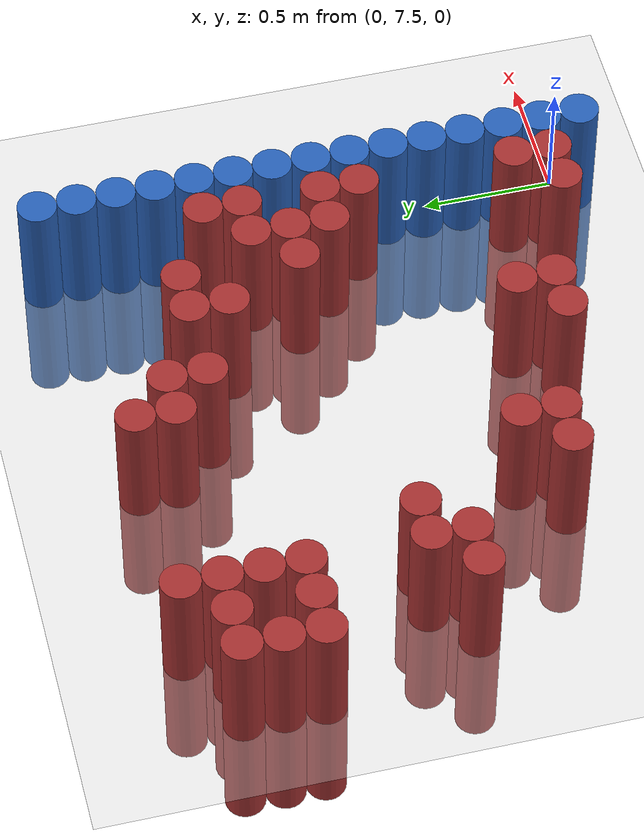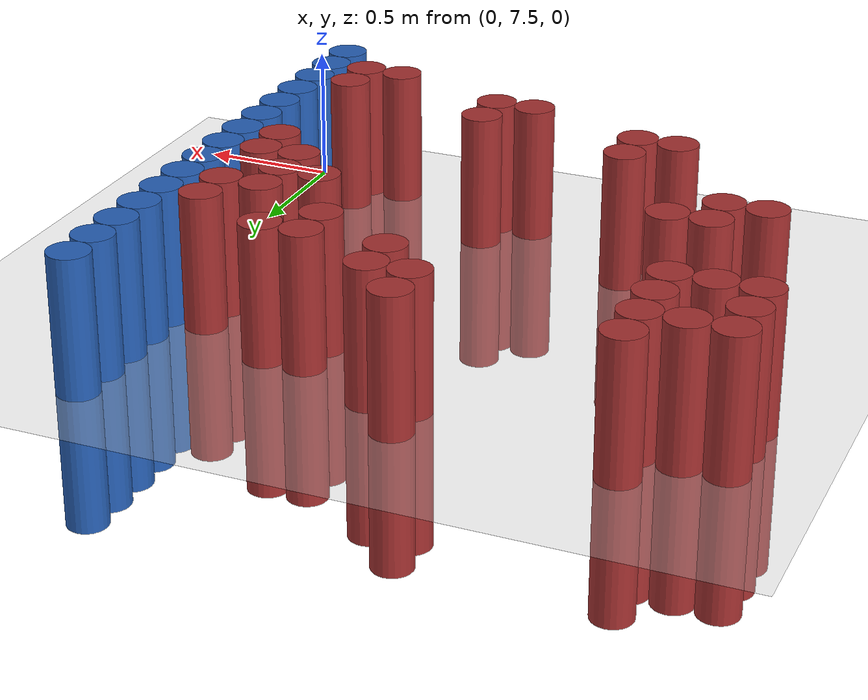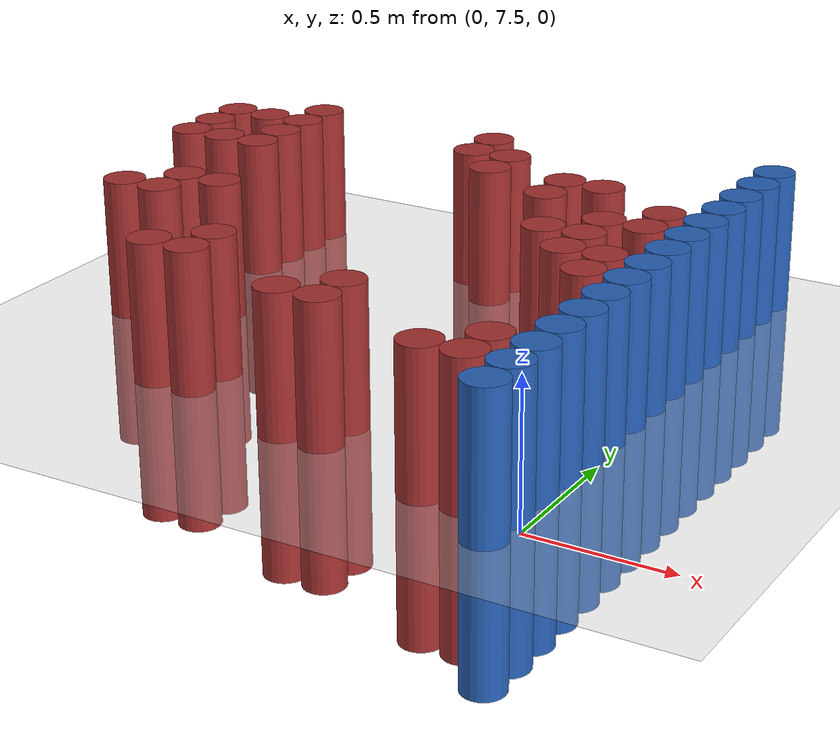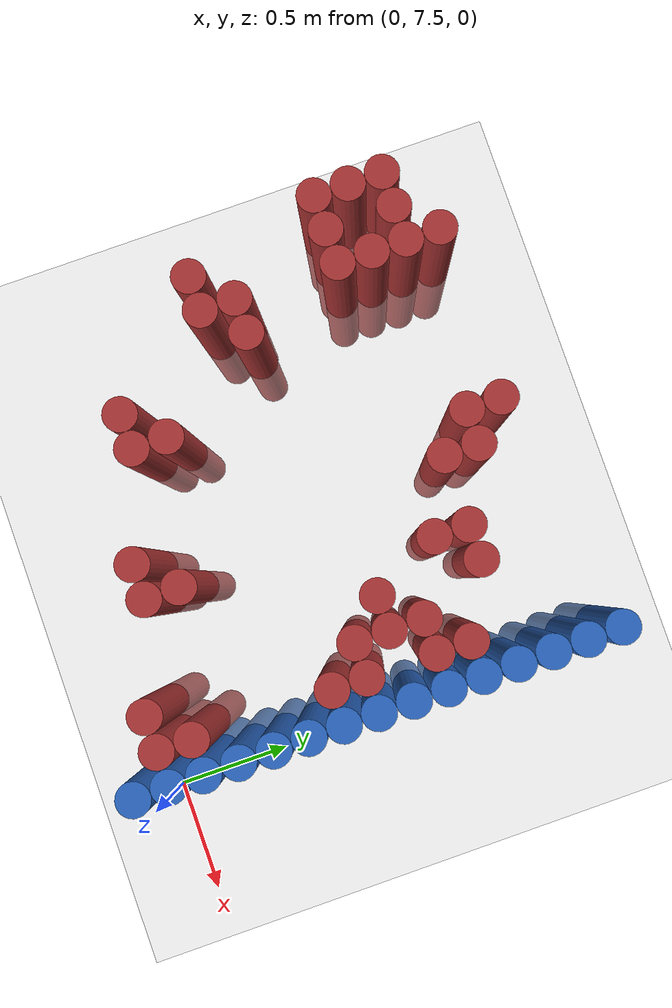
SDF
<sdf version="1.6">
 <world name="default">
  <model name="ground_plane">
   <static>1</static>
   <link name="link">
    <collision name="collision">
     <geometry><plane><normal>0 0 1</normal><size>100 100</size></plane></geometry>
     <surface><friction><ode><mu>100</mu><mu2>50</mu2></ode></friction></surface>
    </collision>
    <visual name="visual">
     <cast_shadows>0</cast_shadows>
     <geometry><plane><normal>0 0 1</normal><size>100 100</size></plane></geometry>
     <material>
      <script><uri>file://media/materials/scripts/gazebo.material</uri><name>Gazebo/Grey</name></script>
     </material>
    </visual>
   </link>
  </model>
  <model name="unit_cylinder_155">
   <static>1</static>
   <pose>-2.175000 8.925000 0.000000 0.000000 0.000000 0.000000</pose>
   <link name="link">
    <inertial>
     <mass>1</mass>
     <inertia><ixx>0.145833</ixx><ixy>0</ixy><ixz>0</ixz><iyy>0.145833</iyy><iyz>0</iyz><izz>0.125</izz></inertia>
    </inertial>
    <collision name="collision">
     <geometry><cylinder><radius>0.075000</radius><length>1</length></cylinder></geometry>
    </collision>
    <visual name="visual">
     <geometry><cylinder><radius>0.075000</radius><length>1</length></cylinder></geometry>
     <material>
      <ambient>0.648000 0.192000 0.192000 1</ambient>
      <diffuse>0.648000 0.192000 0.192000 1</diffuse>
     </material>
     <material>
      <script><name>Gazebo/Grey</name><uri>file://media/materials/scripts/gazebo.material</uri></script>
     </material>
    </visual>
   </link>
  </model>
  <model name="unit_cylinder_156">
   <static>1</static>
   <pose>-2.175000 9.075000 0.000000 0.000000 0.000000 0.000000</pose>
   <link name="link">
    <inertial>
     <mass>1</mass>
     <inertia><ixx>0.145833</ixx><ixy>0</ixy><ixz>0</ixz><iyy>0.145833</iyy><iyz>0</iyz><izz>0.125</izz></inertia>
    </inertial>
    <collision name="collision">
     <geometry><cylinder><radius>0.075000</radius><length>1</length></cylinder></geometry>
    </collision>
    <visual name="visual">
     <geometry><cylinder><radius>0.075000</radius><length>1</length></cylinder></geometry>
     <material>
      <ambient>0.648000 0.192000 0.192000 1</ambient>
      <diffuse>0.648000 0.192000 0.192000 1</diffuse>
     </material>
     <material>
      <script><name>Gazebo/Grey</name><uri>file://media/materials/scripts/gazebo.material</uri></script>
     </material>
    </visual>
   </link>
  </model>
  <model name="unit_cylinder_157">
   <static>1</static>
   <pose>-2.175000 9.225000 0.000000 0.000000 0.000000 0.000000</pose>
   <link name="link">
    <inertial>
     <mass>1</mass>
     <inertia><ixx>0.145833</ixx><ixy>0</ixy><ixz>0</ixz><iyy>0.145833</iyy><iyz>0</iyz><izz>0.125</izz></inertia>
    </inertial>
    <collision name="collision">
     <geometry><cylinder><radius>0.075000</radius><length>1</length></cylinder></geometry>
    </collision>
    <visual name="visual">
     <geometry><cylinder><radius>0.075000</radius><length>1</length></cylinder></geometry>
     <material>
      <ambient>0.648000 0.192000 0.192000 1</ambient>
      <diffuse>0.648000 0.192000 0.192000 1</diffuse>
     </material>
     <material>
      <script><name>Gazebo/Grey</name><uri>file://media/materials/scripts/gazebo.material</uri></script>
     </material>
    </visual>
   </link>
  </model>
  <model name="unit_cylinder_161">
   <static>1</static>
   <pose>-2.025000 8.325000 0.000000 0.000000 0.000000 0.000000</pose>
   <link name="link">
    <inertial>
     <mass>1</mass>
     <inertia><ixx>0.145833</ixx><ixy>0</ixy><ixz>0</ixz><iyy>0.145833</iyy><iyz>0</iyz><izz>0.125</izz></inertia>
    </inertial>
    <collision name="collision">
     <geometry><cylinder><radius>0.075000</radius><length>1</length></cylinder></geometry>
    </collision>
    <visual name="visual">
     <geometry><cylinder><radius>0.075000</radius><length>1</length></cylinder></geometry>
     <material>
      <ambient>0.648000 0.192000 0.192000 1</ambient>
      <diffuse>0.648000 0.192000 0.192000 1</diffuse>
     </material>
     <material>
      <script><name>Gazebo/Grey</name><uri>file://media/materials/scripts/gazebo.material</uri></script>
     </material>
    </visual>
   </link>
  </model>
  <model name="unit_cylinder_162">
   <static>1</static>
   <pose>-2.025000 8.925000 0.000000 0.000000 0.000000 0.000000</pose>
   <link name="link">
    <inertial>
     <mass>1</mass>
     <inertia><ixx>0.145833</ixx><ixy>0</ixy><ixz>0</ixz><iyy>0.145833</iyy><iyz>0</iyz><izz>0.125</izz></inertia>
    </inertial>
    <collision name="collision">
     <geometry><cylinder><radius>0.075000</radius><length>1</length></cylinder></geometry>
    </collision>
    <visual name="visual">
     <geometry><cylinder><radius>0.075000</radius><length>1</length></cylinder></geometry>
     <material>
      <ambient>0.648000 0.192000 0.192000 1</ambient>
      <diffuse>0.648000 0.192000 0.192000 1</diffuse>
     </material>
     <material>
      <script><name>Gazebo/Grey</name><uri>file://media/materials/scripts/gazebo.material</uri></script>
     </material>
    </visual>
   </link>
  </model>
  <model name="unit_cylinder_163">
   <static>1</static>
   <pose>-2.025000 9.225000 0.000000 0.000000 0.000000 0.000000</pose>
   <link name="link">
    <inertial>
     <mass>1</mass>
     <inertia><ixx>0.145833</ixx><ixy>0</ixy><ixz>0</ixz><iyy>0.145833</iyy><iyz>0</iyz><izz>0.125</izz></inertia>
    </inertial>
    <collision name="collision">
     <geometry><cylinder><radius>0.075000</radius><length>1</length></cylinder></geometry>
    </collision>
    <visual name="visual">
     <geometry><cylinder><radius>0.075000</radius><length>1</length></cylinder></geometry>
     <material>
      <ambient>0.648000 0.192000 0.192000 1</ambient>
      <diffuse>0.648000 0.192000 0.192000 1</diffuse>
     </material>
     <material>
      <script><name>Gazebo/Grey</name><uri>file://media/materials/scripts/gazebo.material</uri></script>
     </material>
    </visual>
   </link>
  </model>
  <model name="unit_cylinder_166">
   <static>1</static>
   <pose>-1.875000 8.325000 0.000000 0.000000 0.000000 0.000000</pose>
   <link name="link">
    <inertial>
     <mass>1</mass>
     <inertia><ixx>0.145833</ixx><ixy>0</ixy><ixz>0</ixz><iyy>0.145833</iyy><iyz>0</iyz><izz>0.125</izz></inertia>
    </inertial>
    <collision name="collision">
     <geometry><cylinder><radius>0.075000</radius><length>1</length></cylinder></geometry>
    </collision>
    <visual name="visual">
     <geometry><cylinder><radius>0.075000</radius><length>1</length></cylinder></geometry>
     <material>
      <ambient>0.648000 0.192000 0.192000 1</ambient>
      <diffuse>0.648000 0.192000 0.192000 1</diffuse>
     </material>
     <material>
      <script><name>Gazebo/Grey</name><uri>file://media/materials/scripts/gazebo.material</uri></script>
     </material>
    </visual>
   </link>
  </model>
  <model name="unit_cylinder_167">
   <static>1</static>
   <pose>-1.875000 8.475000 0.000000 0.000000 0.000000 0.000000</pose>
   <link name="link">
    <inertial>
     <mass>1</mass>
     <inertia><ixx>0.145833</ixx><ixy>0</ixy><ixz>0</ixz><iyy>0.145833</iyy><iyz>0</iyz><izz>0.125</izz></inertia>
    </inertial>
    <collision name="collision">
     <geometry><cylinder><radius>0.075000</radius><length>1</length></cylinder></geometry>
    </collision>
    <visual name="visual">
     <geometry><cylinder><radius>0.075000</radius><length>1</length></cylinder></geometry>
     <material>
      <ambient>0.648000 0.192000 0.192000 1</ambient>
      <diffuse>0.648000 0.192000 0.192000 1</diffuse>
     </material>
     <material>
      <script><name>Gazebo/Grey</name><uri>file://media/materials/scripts/gazebo.material</uri></script>
     </material>
    </visual>
   </link>
  </model>
  <model name="unit_cylinder_168">
   <static>1</static>
   <pose>-1.875000 8.925000 0.000000 0.000000 0.000000 0.000000</pose>
   <link name="link">
    <inertial>
     <mass>1</mass>
     <inertia><ixx>0.145833</ixx><ixy>0</ixy><ixz>0</ixz><iyy>0.145833</iyy><iyz>0</iyz><izz>0.125</izz></inertia>
    </inertial>
    <collision name="collision">
     <geometry><cylinder><radius>0.075000</radius><length>1</length></cylinder></geometry>
    </collision>
    <visual name="visual">
     <geometry><cylinder><radius>0.075000</radius><length>1</length></cylinder></geometry>
     <material>
      <ambient>0.648000 0.192000 0.192000 1</ambient>
      <diffuse>0.648000 0.192000 0.192000 1</diffuse>
     </material>
     <material>
      <script><name>Gazebo/Grey</name><uri>file://media/materials/scripts/gazebo.material</uri></script>
     </material>
    </visual>
   </link>
  </model>
  <model name="unit_cylinder_169">
   <static>1</static>
   <pose>-1.875000 9.075000 0.000000 0.000000 0.000000 0.000000</pose>
   <link name="link">
    <inertial>
     <mass>1</mass>
     <inertia><ixx>0.145833</ixx><ixy>0</ixy><ixz>0</ixz><iyy>0.145833</iyy><iyz>0</iyz><izz>0.125</izz></inertia>
    </inertial>
    <collision name="collision">
     <geometry><cylinder><radius>0.075000</radius><length>1</length></cylinder></geometry>
    </collision>
    <visual name="visual">
     <geometry><cylinder><radius>0.075000</radius><length>1</length></cylinder></geometry>
     <material>
      <ambient>0.648000 0.192000 0.192000 1</ambient>
      <diffuse>0.648000 0.192000 0.192000 1</diffuse>
     </material>
     <material>
      <script><name>Gazebo/Grey</name><uri>file://media/materials/scripts/gazebo.material</uri></script>
     </material>
    </visual>
   </link>
  </model>
  <model name="unit_cylinder_170">
   <static>1</static>
   <pose>-1.875000 9.225000 0.000000 0.000000 0.000000 0.000000</pose>
   <link name="link">
    <inertial>
     <mass>1</mass>
     <inertia><ixx>0.145833</ixx><ixy>0</ixy><ixz>0</ixz><iyy>0.145833</iyy><iyz>0</iyz><izz>0.125</izz></inertia>
    </inertial>
    <collision name="collision">
     <geometry><cylinder><radius>0.075000</radius><length>1</length></cylinder></geometry>
    </collision>
    <visual name="visual">
     <geometry><cylinder><radius>0.075000</radius><length>1</length></cylinder></geometry>
     <material>
      <ambient>0.648000 0.192000 0.192000 1</ambient>
      <diffuse>0.648000 0.192000 0.192000 1</diffuse>
     </material>
     <material>
      <script><name>Gazebo/Grey</name><uri>file://media/materials/scripts/gazebo.material</uri></script>
     </material>
    </visual>
   </link>
  </model>
  <model name="unit_cylinder_171">
   <static>1</static>
   <pose>-1.875000 9.375000 0.000000 0.000000 0.000000 0.000000</pose>
   <link name="link">
    <inertial>
     <mass>1</mass>
     <inertia><ixx>0.145833</ixx><ixy>0</ixy><ixz>0</ixz><iyy>0.145833</iyy><iyz>0</iyz><izz>0.125</izz></inertia>
    </inertial>
    <collision name="collision">
     <geometry><cylinder><radius>0.075000</radius><length>1</length></cylinder></geometry>
    </collision>
    <visual name="visual">
     <geometry><cylinder><radius>0.075000</radius><length>1</length></cylinder></geometry>
     <material>
      <ambient>0.648000 0.192000 0.192000 1</ambient>
      <diffuse>0.648000 0.192000 0.192000 1</diffuse>
     </material>
     <material>
      <script><name>Gazebo/Grey</name><uri>file://media/materials/scripts/gazebo.material</uri></script>
     </material>
    </visual>
   </link>
  </model>
  <model name="unit_cylinder_174">
   <static>1</static>
   <pose>-1.725000 8.475000 0.000000 0.000000 0.000000 0.000000</pose>
   <link name="link">
    <inertial>
     <mass>1</mass>
     <inertia><ixx>0.145833</ixx><ixy>0</ixy><ixz>0</ixz><iyy>0.145833</iyy><iyz>0</iyz><izz>0.125</izz></inertia>
    </inertial>
    <collision name="collision">
     <geometry><cylinder><radius>0.075000</radius><length>1</length></cylinder></geometry>
    </collision>
    <visual name="visual">
     <geometry><cylinder><radius>0.075000</radius><length>1</length></cylinder></geometry>
     <material>
      <ambient>0.648000 0.192000 0.192000 1</ambient>
      <diffuse>0.648000 0.192000 0.192000 1</diffuse>
     </material>
     <material>
      <script><name>Gazebo/Grey</name><uri>file://media/materials/scripts/gazebo.material</uri></script>
     </material>
    </visual>
   </link>
  </model>
  <model name="unit_cylinder_177">
   <static>1</static>
   <pose>-1.575000 7.875000 0.000000 0.000000 0.000000 0.000000</pose>
   <link name="link">
    <inertial>
     <mass>1</mass>
     <inertia><ixx>0.145833</ixx><ixy>0</ixy><ixz>0</ixz><iyy>0.145833</iyy><iyz>0</iyz><izz>0.125</izz></inertia>
    </inertial>
    <collision name="collision">
     <geometry><cylinder><radius>0.075000</radius><length>1</length></cylinder></geometry>
    </collision>
    <visual name="visual">
     <geometry><cylinder><radius>0.075000</radius><length>1</length></cylinder></geometry>
     <material>
      <ambient>0.648000 0.192000 0.192000 1</ambient>
      <diffuse>0.648000 0.192000 0.192000 1</diffuse>
     </material>
     <material>
      <script><name>Gazebo/Grey</name><uri>file://media/materials/scripts/gazebo.material</uri></script>
     </material>
    </visual>
   </link>
  </model>
  <model name="unit_cylinder_180">
   <static>1</static>
   <pose>-1.425000 7.875000 0.000000 0.000000 0.000000 0.000000</pose>
   <link name="link">
    <inertial>
     <mass>1</mass>
     <inertia><ixx>0.145833</ixx><ixy>0</ixy><ixz>0</ixz><iyy>0.145833</iyy><iyz>0</iyz><izz>0.125</izz></inertia>
    </inertial>
    <collision name="collision">
     <geometry><cylinder><radius>0.075000</radius><length>1</length></cylinder></geometry>
    </collision>
    <visual name="visual">
     <geometry><cylinder><radius>0.075000</radius><length>1</length></cylinder></geometry>
     <material>
      <ambient>0.648000 0.192000 0.192000 1</ambient>
      <diffuse>0.648000 0.192000 0.192000 1</diffuse>
     </material>
     <material>
      <script><name>Gazebo/Grey</name><uri>file://media/materials/scripts/gazebo.material</uri></script>
     </material>
    </visual>
   </link>
  </model>
  <model name="unit_cylinder_181">
   <static>1</static>
   <pose>-1.425000 8.025000 0.000000 0.000000 0.000000 0.000000</pose>
   <link name="link">
    <inertial>
     <mass>1</mass>
     <inertia><ixx>0.145833</ixx><ixy>0</ixy><ixz>0</ixz><iyy>0.145833</iyy><iyz>0</iyz><izz>0.125</izz></inertia>
    </inertial>
    <collision name="collision">
     <geometry><cylinder><radius>0.075000</radius><length>1</length></cylinder></geometry>
    </collision>
    <visual name="visual">
     <geometry><cylinder><radius>0.075000</radius><length>1</length></cylinder></geometry>
     <material>
      <ambient>0.648000 0.192000 0.192000 1</ambient>
      <diffuse>0.648000 0.192000 0.192000 1</diffuse>
     </material>
     <material>
      <script><name>Gazebo/Grey</name><uri>file://media/materials/scripts/gazebo.material</uri></script>
     </material>
    </visual>
   </link>
  </model>
  <model name="unit_cylinder_186">
   <static>1</static>
   <pose>-1.125000 9.225000 0.000000 0.000000 0.000000 0.000000</pose>
   <link name="link">
    <inertial>
     <mass>1</mass>
     <inertia><ixx>0.145833</ixx><ixy>0</ixy><ixz>0</ixz><iyy>0.145833</iyy><iyz>0</iyz><izz>0.125</izz></inertia>
    </inertial>
    <collision name="collision">
     <geometry><cylinder><radius>0.075000</radius><length>1</length></cylinder></geometry>
    </collision>
    <visual name="visual">
     <geometry><cylinder><radius>0.075000</radius><length>1</length></cylinder></geometry>
     <material>
      <ambient>0.648000 0.192000 0.192000 1</ambient>
      <diffuse>0.648000 0.192000 0.192000 1</diffuse>
     </material>
     <material>
      <script><name>Gazebo/Grey</name><uri>file://media/materials/scripts/gazebo.material</uri></script>
     </material>
    </visual>
   </link>
  </model>
  <model name="unit_cylinder_187">
   <static>1</static>
   <pose>-1.125000 9.375000 0.000000 0.000000 0.000000 0.000000</pose>
   <link name="link">
    <inertial>
     <mass>1</mass>
     <inertia><ixx>0.145833</ixx><ixy>0</ixy><ixz>0</ixz><iyy>0.145833</iyy><iyz>0</iyz><izz>0.125</izz></inertia>
    </inertial>
    <collision name="collision">
     <geometry><cylinder><radius>0.075000</radius><length>1</length></cylinder></geometry>
    </collision>
    <visual name="visual">
     <geometry><cylinder><radius>0.075000</radius><length>1</length></cylinder></geometry>
     <material>
      <ambient>0.648000 0.192000 0.192000 1</ambient>
      <diffuse>0.648000 0.192000 0.192000 1</diffuse>
     </material>
     <material>
      <script><name>Gazebo/Grey</name><uri>file://media/materials/scripts/gazebo.material</uri></script>
     </material>
    </visual>
   </link>
  </model>
  <model name="unit_cylinder_189">
   <static>1</static>
   <pose>-0.975000 7.725000 0.000000 0.000000 0.000000 0.000000</pose>
   <link name="link">
    <inertial>
     <mass>1</mass>
     <inertia><ixx>0.145833</ixx><ixy>0</ixy><ixz>0</ixz><iyy>0.145833</iyy><iyz>0</iyz><izz>0.125</izz></inertia>
    </inertial>
    <collision name="collision">
     <geometry><cylinder><radius>0.075000</radius><length>1</length></cylinder></geometry>
    </collision>
    <visual name="visual">
     <geometry><cylinder><radius>0.075000</radius><length>1</length></cylinder></geometry>
     <material>
      <ambient>0.648000 0.192000 0.192000 1</ambient>
      <diffuse>0.648000 0.192000 0.192000 1</diffuse>
     </material>
     <material>
      <script><name>Gazebo/Grey</name><uri>file://media/materials/scripts/gazebo.material</uri></script>
     </material>
    </visual>
   </link>
  </model>
  <model name="unit_cylinder_190">
   <static>1</static>
   <pose>-0.975000 9.075000 0.000000 0.000000 0.000000 0.000000</pose>
   <link name="link">
    <inertial>
     <mass>1</mass>
     <inertia><ixx>0.145833</ixx><ixy>0</ixy><ixz>0</ixz><iyy>0.145833</iyy><iyz>0</iyz><izz>0.125</izz></inertia>
    </inertial>
    <collision name="collision">
     <geometry><cylinder><radius>0.075000</radius><length>1</length></cylinder></geometry>
    </collision>
    <visual name="visual">
     <geometry><cylinder><radius>0.075000</radius><length>1</length></cylinder></geometry>
     <material>
      <ambient>0.648000 0.192000 0.192000 1</ambient>
      <diffuse>0.648000 0.192000 0.192000 1</diffuse>
     </material>
     <material>
      <script><name>Gazebo/Grey</name><uri>file://media/materials/scripts/gazebo.material</uri></script>
     </material>
    </visual>
   </link>
  </model>
  <model name="unit_cylinder_191">
   <static>1</static>
   <pose>-0.975000 9.225000 0.000000 0.000000 0.000000 0.000000</pose>
   <link name="link">
    <inertial>
     <mass>1</mass>
     <inertia><ixx>0.145833</ixx><ixy>0</ixy><ixz>0</ixz><iyy>0.145833</iyy><iyz>0</iyz><izz>0.125</izz></inertia>
    </inertial>
    <collision name="collision">
     <geometry><cylinder><radius>0.075000</radius><length>1</length></cylinder></geometry>
    </collision>
    <visual name="visual">
     <geometry><cylinder><radius>0.075000</radius><length>1</length></cylinder></geometry>
     <material>
      <ambient>0.648000 0.192000 0.192000 1</ambient>
      <diffuse>0.648000 0.192000 0.192000 1</diffuse>
     </material>
     <material>
      <script><name>Gazebo/Grey</name><uri>file://media/materials/scripts/gazebo.material</uri></script>
     </material>
    </visual>
   </link>
  </model>
  <model name="unit_cylinder_192">
   <static>1</static>
   <pose>-0.825000 7.725000 0.000000 0.000000 0.000000 0.000000</pose>
   <link name="link">
    <inertial>
     <mass>1</mass>
     <inertia><ixx>0.145833</ixx><ixy>0</ixy><ixz>0</ixz><iyy>0.145833</iyy><iyz>0</iyz><izz>0.125</izz></inertia>
    </inertial>
    <collision name="collision">
     <geometry><cylinder><radius>0.075000</radius><length>1</length></cylinder></geometry>
    </collision>
    <visual name="visual">
     <geometry><cylinder><radius>0.075000</radius><length>1</length></cylinder></geometry>
     <material>
      <ambient>0.648000 0.192000 0.192000 1</ambient>
      <diffuse>0.648000 0.192000 0.192000 1</diffuse>
     </material>
     <material>
      <script><name>Gazebo/Grey</name><uri>file://media/materials/scripts/gazebo.material</uri></script>
     </material>
    </visual>
   </link>
  </model>
  <model name="unit_cylinder_193">
   <static>1</static>
   <pose>-0.825000 7.875000 0.000000 0.000000 0.000000 0.000000</pose>
   <link name="link">
    <inertial>
     <mass>1</mass>
     <inertia><ixx>0.145833</ixx><ixy>0</ixy><ixz>0</ixz><iyy>0.145833</iyy><iyz>0</iyz><izz>0.125</izz></inertia>
    </inertial>
    <collision name="collision">
     <geometry><cylinder><radius>0.075000</radius><length>1</length></cylinder></geometry>
    </collision>
    <visual name="visual">
     <geometry><cylinder><radius>0.075000</radius><length>1</length></cylinder></geometry>
     <material>
      <ambient>0.648000 0.192000 0.192000 1</ambient>
      <diffuse>0.648000 0.192000 0.192000 1</diffuse>
     </material>
     <material>
      <script><name>Gazebo/Grey</name><uri>file://media/materials/scripts/gazebo.material</uri></script>
     </material>
    </visual>
   </link>
  </model>
  <model name="unit_cylinder_195">
   <static>1</static>
   <pose>-0.675000 8.925000 0.000000 0.000000 0.000000 0.000000</pose>
   <link name="link">
    <inertial>
     <mass>1</mass>
     <inertia><ixx>0.145833</ixx><ixy>0</ixy><ixz>0</ixz><iyy>0.145833</iyy><iyz>0</iyz><izz>0.125</izz></inertia>
    </inertial>
    <collision name="collision">
     <geometry><cylinder><radius>0.075000</radius><length>1</length></cylinder></geometry>
    </collision>
    <visual name="visual">
     <geometry><cylinder><radius>0.075000</radius><length>1</length></cylinder></geometry>
     <material>
      <ambient>0.648000 0.192000 0.192000 1</ambient>
      <diffuse>0.648000 0.192000 0.192000 1</diffuse>
     </material>
     <material>
      <script><name>Gazebo/Grey</name><uri>file://media/materials/scripts/gazebo.material</uri></script>
     </material>
    </visual>
   </link>
  </model>
  <model name="unit_cylinder_196">
   <static>1</static>
   <pose>-0.675000 9.075000 0.000000 0.000000 0.000000 0.000000</pose>
   <link name="link">
    <inertial>
     <mass>1</mass>
     <inertia><ixx>0.145833</ixx><ixy>0</ixy><ixz>0</ixz><iyy>0.145833</iyy><iyz>0</iyz><izz>0.125</izz></inertia>
    </inertial>
    <collision name="collision">
     <geometry><cylinder><radius>0.075000</radius><length>1</length></cylinder></geometry>
    </collision>
    <visual name="visual">
     <geometry><cylinder><radius>0.075000</radius><length>1</length></cylinder></geometry>
     <material>
      <ambient>0.648000 0.192000 0.192000 1</ambient>
      <diffuse>0.648000 0.192000 0.192000 1</diffuse>
     </material>
     <material>
      <script><name>Gazebo/Grey</name><uri>file://media/materials/scripts/gazebo.material</uri></script>
     </material>
    </visual>
   </link>
  </model>
  <model name="unit_cylinder_199">
   <static>1</static>
   <pose>-0.525000 8.625000 0.000000 0.000000 0.000000 0.000000</pose>
   <link name="link">
    <inertial>
     <mass>1</mass>
     <inertia><ixx>0.145833</ixx><ixy>0</ixy><ixz>0</ixz><iyy>0.145833</iyy><iyz>0</iyz><izz>0.125</izz></inertia>
    </inertial>
    <collision name="collision">
     <geometry><cylinder><radius>0.075000</radius><length>1</length></cylinder></geometry>
    </collision>
    <visual name="visual">
     <geometry><cylinder><radius>0.075000</radius><length>1</length></cylinder></geometry>
     <material>
      <ambient>0.648000 0.192000 0.192000 1</ambient>
      <diffuse>0.648000 0.192000 0.192000 1</diffuse>
     </material>
     <material>
      <script><name>Gazebo/Grey</name><uri>file://media/materials/scripts/gazebo.material</uri></script>
     </material>
    </visual>
   </link>
  </model>
  <model name="unit_cylinder_200">
   <static>1</static>
   <pose>-0.525000 9.075000 0.000000 0.000000 0.000000 0.000000</pose>
   <link name="link">
    <inertial>
     <mass>1</mass>
     <inertia><ixx>0.145833</ixx><ixy>0</ixy><ixz>0</ixz><iyy>0.145833</iyy><iyz>0</iyz><izz>0.125</izz></inertia>
    </inertial>
    <collision name="collision">
     <geometry><cylinder><radius>0.075000</radius><length>1</length></cylinder></geometry>
    </collision>
    <visual name="visual">
     <geometry><cylinder><radius>0.075000</radius><length>1</length></cylinder></geometry>
     <material>
      <ambient>0.648000 0.192000 0.192000 1</ambient>
      <diffuse>0.648000 0.192000 0.192000 1</diffuse>
     </material>
     <material>
      <script><name>Gazebo/Grey</name><uri>file://media/materials/scripts/gazebo.material</uri></script>
     </material>
    </visual>
   </link>
  </model>
  <model name="unit_cylinder_208">
   <static>1</static>
   <pose>-0.375000 7.575000 0.000000 0.000000 0.000000 0.000000</pose>
   <link name="link">
    <inertial>
     <mass>1</mass>
     <inertia><ixx>0.145833</ixx><ixy>0</ixy><ixz>0</ixz><iyy>0.145833</iyy><iyz>0</iyz><izz>0.125</izz></inertia>
    </inertial>
    <collision name="collision">
     <geometry><cylinder><radius>0.075000</radius><length>1</length></cylinder></geometry>
    </collision>
    <visual name="visual">
     <geometry><cylinder><radius>0.075000</radius><length>1</length></cylinder></geometry>
     <material>
      <ambient>0.648000 0.192000 0.192000 1</ambient>
      <diffuse>0.648000 0.192000 0.192000 1</diffuse>
     </material>
     <material>
      <script><name>Gazebo/Grey</name><uri>file://media/materials/scripts/gazebo.material</uri></script>
     </material>
    </visual>
   </link>
  </model>
  <model name="unit_cylinder_209">
   <static>1</static>
   <pose>-0.375000 8.475000 0.000000 0.000000 0.000000 0.000000</pose>
   <link name="link">
    <inertial>
     <mass>1</mass>
     <inertia><ixx>0.145833</ixx><ixy>0</ixy><ixz>0</ixz><iyy>0.145833</iyy><iyz>0</iyz><izz>0.125</izz></inertia>
    </inertial>
    <collision name="collision">
     <geometry><cylinder><radius>0.075000</radius><length>1</length></cylinder></geometry>
    </collision>
    <visual name="visual">
     <geometry><cylinder><radius>0.075000</radius><length>1</length></cylinder></geometry>
     <material>
      <ambient>0.648000 0.192000 0.192000 1</ambient>
      <diffuse>0.648000 0.192000 0.192000 1</diffuse>
     </material>
     <material>
      <script><name>Gazebo/Grey</name><uri>file://media/materials/scripts/gazebo.material</uri></script>
     </material>
    </visual>
   </link>
  </model>
  <model name="unit_cylinder_210">
   <static>1</static>
   <pose>-0.375000 8.625000 0.000000 0.000000 0.000000 0.000000</pose>
   <link name="link">
    <inertial>
     <mass>1</mass>
     <inertia><ixx>0.145833</ixx><ixy>0</ixy><ixz>0</ixz><iyy>0.145833</iyy><iyz>0</iyz><izz>0.125</izz></inertia>
    </inertial>
    <collision name="collision">
     <geometry><cylinder><radius>0.075000</radius><length>1</length></cylinder></geometry>
    </collision>
    <visual name="visual">
     <geometry><cylinder><radius>0.075000</radius><length>1</length></cylinder></geometry>
     <material>
      <ambient>0.648000 0.192000 0.192000 1</ambient>
      <diffuse>0.648000 0.192000 0.192000 1</diffuse>
     </material>
     <material>
      <script><name>Gazebo/Grey</name><uri>file://media/materials/scripts/gazebo.material</uri></script>
     </material>
    </visual>
   </link>
  </model>
  <model name="unit_cylinder_211">
   <static>1</static>
   <pose>-0.375000 8.775000 0.000000 0.000000 0.000000 0.000000</pose>
   <link name="link">
    <inertial>
     <mass>1</mass>
     <inertia><ixx>0.145833</ixx><ixy>0</ixy><ixz>0</ixz><iyy>0.145833</iyy><iyz>0</iyz><izz>0.125</izz></inertia>
    </inertial>
    <collision name="collision">
     <geometry><cylinder><radius>0.075000</radius><length>1</length></cylinder></geometry>
    </collision>
    <visual name="visual">
     <geometry><cylinder><radius>0.075000</radius><length>1</length></cylinder></geometry>
     <material>
      <ambient>0.648000 0.192000 0.192000 1</ambient>
      <diffuse>0.648000 0.192000 0.192000 1</diffuse>
     </material>
     <material>
      <script><name>Gazebo/Grey</name><uri>file://media/materials/scripts/gazebo.material</uri></script>
     </material>
    </visual>
   </link>
  </model>
  <model name="unit_cylinder_222">
   <static>1</static>
   <pose>-0.225000 7.575000 0.000000 0.000000 0.000000 0.000000</pose>
   <link name="link">
    <inertial>
     <mass>1</mass>
     <inertia><ixx>0.145833</ixx><ixy>0</ixy><ixz>0</ixz><iyy>0.145833</iyy><iyz>0</iyz><izz>0.125</izz></inertia>
    </inertial>
    <collision name="collision">
     <geometry><cylinder><radius>0.075000</radius><length>1</length></cylinder></geometry>
    </collision>
    <visual name="visual">
     <geometry><cylinder><radius>0.075000</radius><length>1</length></cylinder></geometry>
     <material>
      <ambient>0.648000 0.192000 0.192000 1</ambient>
      <diffuse>0.648000 0.192000 0.192000 1</diffuse>
     </material>
     <material>
      <script><name>Gazebo/Grey</name><uri>file://media/materials/scripts/gazebo.material</uri></script>
     </material>
    </visual>
   </link>
  </model>
  <model name="unit_cylinder_223">
   <static>1</static>
   <pose>-0.225000 7.725000 0.000000 0.000000 0.000000 0.000000</pose>
   <link name="link">
    <inertial>
     <mass>1</mass>
     <inertia><ixx>0.145833</ixx><ixy>0</ixy><ixz>0</ixz><iyy>0.145833</iyy><iyz>0</iyz><izz>0.125</izz></inertia>
    </inertial>
    <collision name="collision">
     <geometry><cylinder><radius>0.075000</radius><length>1</length></cylinder></geometry>
    </collision>
    <visual name="visual">
     <geometry><cylinder><radius>0.075000</radius><length>1</length></cylinder></geometry>
     <material>
      <ambient>0.648000 0.192000 0.192000 1</ambient>
      <diffuse>0.648000 0.192000 0.192000 1</diffuse>
     </material>
     <material>
      <script><name>Gazebo/Grey</name><uri>file://media/materials/scripts/gazebo.material</uri></script>
     </material>
    </visual>
   </link>
  </model>
  <model name="unit_cylinder_224">
   <static>1</static>
   <pose>-0.225000 8.325000 0.000000 0.000000 0.000000 0.000000</pose>
   <link name="link">
    <inertial>
     <mass>1</mass>
     <inertia><ixx>0.145833</ixx><ixy>0</ixy><ixz>0</ixz><iyy>0.145833</iyy><iyz>0</iyz><izz>0.125</izz></inertia>
    </inertial>
    <collision name="collision">
     <geometry><cylinder><radius>0.075000</radius><length>1</length></cylinder></geometry>
    </collision>
    <visual name="visual">
     <geometry><cylinder><radius>0.075000</radius><length>1</length></cylinder></geometry>
     <material>
      <ambient>0.648000 0.192000 0.192000 1</ambient>
      <diffuse>0.648000 0.192000 0.192000 1</diffuse>
     </material>
     <material>
      <script><name>Gazebo/Grey</name><uri>file://media/materials/scripts/gazebo.material</uri></script>
     </material>
    </visual>
   </link>
  </model>
  <model name="unit_cylinder_225">
   <static>1</static>
   <pose>-0.225000 8.475000 0.000000 0.000000 0.000000 0.000000</pose>
   <link name="link">
    <inertial>
     <mass>1</mass>
     <inertia><ixx>0.145833</ixx><ixy>0</ixy><ixz>0</ixz><iyy>0.145833</iyy><iyz>0</iyz><izz>0.125</izz></inertia>
    </inertial>
    <collision name="collision">
     <geometry><cylinder><radius>0.075000</radius><length>1</length></cylinder></geometry>
    </collision>
    <visual name="visual">
     <geometry><cylinder><radius>0.075000</radius><length>1</length></cylinder></geometry>
     <material>
      <ambient>0.648000 0.192000 0.192000 1</ambient>
      <diffuse>0.648000 0.192000 0.192000 1</diffuse>
     </material>
     <material>
      <script><name>Gazebo/Grey</name><uri>file://media/materials/scripts/gazebo.material</uri></script>
     </material>
    </visual>
   </link>
  </model>
  <model name="unit_cylinder_226">
   <static>1</static>
   <pose>-0.225000 8.775000 0.000000 0.000000 0.000000 0.000000</pose>
   <link name="link">
    <inertial>
     <mass>1</mass>
     <inertia><ixx>0.145833</ixx><ixy>0</ixy><ixz>0</ixz><iyy>0.145833</iyy><iyz>0</iyz><izz>0.125</izz></inertia>
    </inertial>
    <collision name="collision">
     <geometry><cylinder><radius>0.075000</radius><length>1</length></cylinder></geometry>
    </collision>
    <visual name="visual">
     <geometry><cylinder><radius>0.075000</radius><length>1</length></cylinder></geometry>
     <material>
      <ambient>0.648000 0.192000 0.192000 1</ambient>
      <diffuse>0.648000 0.192000 0.192000 1</diffuse>
     </material>
     <material>
      <script><name>Gazebo/Grey</name><uri>file://media/materials/scripts/gazebo.material</uri></script>
     </material>
    </visual>
   </link>
  </model>
  <model name="unit_cylinder_227">
   <static>1</static>
   <pose>-0.225000 8.925000 0.000000 0.000000 0.000000 0.000000</pose>
   <link name="link">
    <inertial>
     <mass>1</mass>
     <inertia><ixx>0.145833</ixx><ixy>0</ixy><ixz>0</ixz><iyy>0.145833</iyy><iyz>0</iyz><izz>0.125</izz></inertia>
    </inertial>
    <collision name="collision">
     <geometry><cylinder><radius>0.075000</radius><length>1</length></cylinder></geometry>
    </collision>
    <visual name="visual">
     <geometry><cylinder><radius>0.075000</radius><length>1</length></cylinder></geometry>
     <material>
      <ambient>0.648000 0.192000 0.192000 1</ambient>
      <diffuse>0.648000 0.192000 0.192000 1</diffuse>
     </material>
     <material>
      <script><name>Gazebo/Grey</name><uri>file://media/materials/scripts/gazebo.material</uri></script>
     </material>
    </visual>
   </link>
  </model>
  <model name="unit_cylinder_243">
   <static>1</static>
   <pose>-0.075000 7.425000 0.000000 0.000000 0.000000 0.000000</pose>
   <link name="link">
    <inertial>
     <mass>1</mass>
     <inertia><ixx>0.145833</ixx><ixy>0</ixy><ixz>0</ixz><iyy>0.145833</iyy><iyz>0</iyz><izz>0.125</izz></inertia>
    </inertial>
    <collision name="collision">
     <geometry><cylinder><radius>0.075000</radius><length>1</length></cylinder></geometry>
    </collision>
    <visual name="visual">
     <geometry><cylinder><radius>0.075000</radius><length>1</length></cylinder></geometry>
     <material>
      <ambient>0.152000 0.379000 0.720000 1</ambient>
      <diffuse>0.152000 0.379000 0.720000 1</diffuse>
     </material>
     <material>
      <script><name>Gazebo/Grey</name><uri>file://media/materials/scripts/gazebo.material</uri></script>
     </material>
    </visual>
   </link>
  </model>
  <model name="unit_cylinder_244">
   <static>1</static>
   <pose>-0.075000 7.575000 0.000000 0.000000 0.000000 0.000000</pose>
   <link name="link">
    <inertial>
     <mass>1</mass>
     <inertia><ixx>0.145833</ixx><ixy>0</ixy><ixz>0</ixz><iyy>0.145833</iyy><iyz>0</iyz><izz>0.125</izz></inertia>
    </inertial>
    <collision name="collision">
     <geometry><cylinder><radius>0.075000</radius><length>1</length></cylinder></geometry>
    </collision>
    <visual name="visual">
     <geometry><cylinder><radius>0.075000</radius><length>1</length></cylinder></geometry>
     <material>
      <ambient>0.152000 0.379000 0.720000 1</ambient>
      <diffuse>0.152000 0.379000 0.720000 1</diffuse>
     </material>
     <material>
      <script><name>Gazebo/Grey</name><uri>file://media/materials/scripts/gazebo.material</uri></script>
     </material>
    </visual>
   </link>
  </model>
  <model name="unit_cylinder_245">
   <static>1</static>
   <pose>-0.075000 7.725000 0.000000 0.000000 0.000000 0.000000</pose>
   <link name="link">
    <inertial>
     <mass>1</mass>
     <inertia><ixx>0.145833</ixx><ixy>0</ixy><ixz>0</ixz><iyy>0.145833</iyy><iyz>0</iyz><izz>0.125</izz></inertia>
    </inertial>
    <collision name="collision">
     <geometry><cylinder><radius>0.075000</radius><length>1</length></cylinder></geometry>
    </collision>
    <visual name="visual">
     <geometry><cylinder><radius>0.075000</radius><length>1</length></cylinder></geometry>
     <material>
      <ambient>0.152000 0.379000 0.720000 1</ambient>
      <diffuse>0.152000 0.379000 0.720000 1</diffuse>
     </material>
     <material>
      <script><name>Gazebo/Grey</name><uri>file://media/materials/scripts/gazebo.material</uri></script>
     </material>
    </visual>
   </link>
  </model>
  <model name="unit_cylinder_246">
   <static>1</static>
   <pose>-0.075000 7.875000 0.000000 0.000000 0.000000 0.000000</pose>
   <link name="link">
    <inertial>
     <mass>1</mass>
     <inertia><ixx>0.145833</ixx><ixy>0</ixy><ixz>0</ixz><iyy>0.145833</iyy><iyz>0</iyz><izz>0.125</izz></inertia>
    </inertial>
    <collision name="collision">
     <geometry><cylinder><radius>0.075000</radius><length>1</length></cylinder></geometry>
    </collision>
    <visual name="visual">
     <geometry><cylinder><radius>0.075000</radius><length>1</length></cylinder></geometry>
     <material>
      <ambient>0.152000 0.379000 0.720000 1</ambient>
      <diffuse>0.152000 0.379000 0.720000 1</diffuse>
     </material>
     <material>
      <script><name>Gazebo/Grey</name><uri>file://media/materials/scripts/gazebo.material</uri></script>
     </material>
    </visual>
   </link>
  </model>
  <model name="unit_cylinder_247">
   <static>1</static>
   <pose>-0.075000 8.025000 0.000000 0.000000 0.000000 0.000000</pose>
   <link name="link">
    <inertial>
     <mass>1</mass>
     <inertia><ixx>0.145833</ixx><ixy>0</ixy><ixz>0</ixz><iyy>0.145833</iyy><iyz>0</iyz><izz>0.125</izz></inertia>
    </inertial>
    <collision name="collision">
     <geometry><cylinder><radius>0.075000</radius><length>1</length></cylinder></geometry>
    </collision>
    <visual name="visual">
     <geometry><cylinder><radius>0.075000</radius><length>1</length></cylinder></geometry>
     <material>
      <ambient>0.152000 0.379000 0.720000 1</ambient>
      <diffuse>0.152000 0.379000 0.720000 1</diffuse>
     </material>
     <material>
      <script><name>Gazebo/Grey</name><uri>file://media/materials/scripts/gazebo.material</uri></script>
     </material>
    </visual>
   </link>
  </model>
  <model name="unit_cylinder_248">
   <static>1</static>
   <pose>-0.075000 8.175000 0.000000 0.000000 0.000000 0.000000</pose>
   <link name="link">
    <inertial>
     <mass>1</mass>
     <inertia><ixx>0.145833</ixx><ixy>0</ixy><ixz>0</ixz><iyy>0.145833</iyy><iyz>0</iyz><izz>0.125</izz></inertia>
    </inertial>
    <collision name="collision">
     <geometry><cylinder><radius>0.075000</radius><length>1</length></cylinder></geometry>
    </collision>
    <visual name="visual">
     <geometry><cylinder><radius>0.075000</radius><length>1</length></cylinder></geometry>
     <material>
      <ambient>0.152000 0.379000 0.720000 1</ambient>
      <diffuse>0.152000 0.379000 0.720000 1</diffuse>
     </material>
     <material>
      <script><name>Gazebo/Grey</name><uri>file://media/materials/scripts/gazebo.material</uri></script>
     </material>
    </visual>
   </link>
  </model>
  <model name="unit_cylinder_249">
   <static>1</static>
   <pose>-0.075000 8.325000 0.000000 0.000000 0.000000 0.000000</pose>
   <link name="link">
    <inertial>
     <mass>1</mass>
     <inertia><ixx>0.145833</ixx><ixy>0</ixy><ixz>0</ixz><iyy>0.145833</iyy><iyz>0</iyz><izz>0.125</izz></inertia>
    </inertial>
    <collision name="collision">
     <geometry><cylinder><radius>0.075000</radius><length>1</length></cylinder></geometry>
    </collision>
    <visual name="visual">
     <geometry><cylinder><radius>0.075000</radius><length>1</length></cylinder></geometry>
     <material>
      <ambient>0.152000 0.379000 0.720000 1</ambient>
      <diffuse>0.152000 0.379000 0.720000 1</diffuse>
     </material>
     <material>
      <script><name>Gazebo/Grey</name><uri>file://media/materials/scripts/gazebo.material</uri></script>
     </material>
    </visual>
   </link>
  </model>
  <model name="unit_cylinder_250">
   <static>1</static>
   <pose>-0.075000 8.475000 0.000000 0.000000 0.000000 0.000000</pose>
   <link name="link">
    <inertial>
     <mass>1</mass>
     <inertia><ixx>0.145833</ixx><ixy>0</ixy><ixz>0</ixz><iyy>0.145833</iyy><iyz>0</iyz><izz>0.125</izz></inertia>
    </inertial>
    <collision name="collision">
     <geometry><cylinder><radius>0.075000</radius><length>1</length></cylinder></geometry>
    </collision>
    <visual name="visual">
     <geometry><cylinder><radius>0.075000</radius><length>1</length></cylinder></geometry>
     <material>
      <ambient>0.152000 0.379000 0.720000 1</ambient>
      <diffuse>0.152000 0.379000 0.720000 1</diffuse>
     </material>
     <material>
      <script><name>Gazebo/Grey</name><uri>file://media/materials/scripts/gazebo.material</uri></script>
     </material>
    </visual>
   </link>
  </model>
  <model name="unit_cylinder_251">
   <static>1</static>
   <pose>-0.075000 8.625000 0.000000 0.000000 0.000000 0.000000</pose>
   <link name="link">
    <inertial>
     <mass>1</mass>
     <inertia><ixx>0.145833</ixx><ixy>0</ixy><ixz>0</ixz><iyy>0.145833</iyy><iyz>0</iyz><izz>0.125</izz></inertia>
    </inertial>
    <collision name="collision">
     <geometry><cylinder><radius>0.075000</radius><length>1</length></cylinder></geometry>
    </collision>
    <visual name="visual">
     <geometry><cylinder><radius>0.075000</radius><length>1</length></cylinder></geometry>
     <material>
      <ambient>0.152000 0.379000 0.720000 1</ambient>
      <diffuse>0.152000 0.379000 0.720000 1</diffuse>
     </material>
     <material>
      <script><name>Gazebo/Grey</name><uri>file://media/materials/scripts/gazebo.material</uri></script>
     </material>
    </visual>
   </link>
  </model>
  <model name="unit_cylinder_252">
   <static>1</static>
   <pose>-0.075000 8.775000 0.000000 0.000000 0.000000 0.000000</pose>
   <link name="link">
    <inertial>
     <mass>1</mass>
     <inertia><ixx>0.145833</ixx><ixy>0</ixy><ixz>0</ixz><iyy>0.145833</iyy><iyz>0</iyz><izz>0.125</izz></inertia>
    </inertial>
    <collision name="collision">
     <geometry><cylinder><radius>0.075000</radius><length>1</length></cylinder></geometry>
    </collision>
    <visual name="visual">
     <geometry><cylinder><radius>0.075000</radius><length>1</length></cylinder></geometry>
     <material>
      <ambient>0.152000 0.379000 0.720000 1</ambient>
      <diffuse>0.152000 0.379000 0.720000 1</diffuse>
     </material>
     <material>
      <script><name>Gazebo/Grey</name><uri>file://media/materials/scripts/gazebo.material</uri></script>
     </material>
    </visual>
   </link>
  </model>
  <model name="unit_cylinder_253">
   <static>1</static>
   <pose>-0.075000 8.925000 0.000000 0.000000 0.000000 0.000000</pose>
   <link name="link">
    <inertial>
     <mass>1</mass>
     <inertia><ixx>0.145833</ixx><ixy>0</ixy><ixz>0</ixz><iyy>0.145833</iyy><iyz>0</iyz><izz>0.125</izz></inertia>
    </inertial>
    <collision name="collision">
     <geometry><cylinder><radius>0.075000</radius><length>1</length></cylinder></geometry>
    </collision>
    <visual name="visual">
     <geometry><cylinder><radius>0.075000</radius><length>1</length></cylinder></geometry>
     <material>
      <ambient>0.152000 0.379000 0.720000 1</ambient>
      <diffuse>0.152000 0.379000 0.720000 1</diffuse>
     </material>
     <material>
      <script><name>Gazebo/Grey</name><uri>file://media/materials/scripts/gazebo.material</uri></script>
     </material>
    </visual>
   </link>
  </model>
  <model name="unit_cylinder_254">
   <static>1</static>
   <pose>-0.075000 9.075000 0.000000 0.000000 0.000000 0.000000</pose>
   <link name="link">
    <inertial>
     <mass>1</mass>
     <inertia><ixx>0.145833</ixx><ixy>0</ixy><ixz>0</ixz><iyy>0.145833</iyy><iyz>0</iyz><izz>0.125</izz></inertia>
    </inertial>
    <collision name="collision">
     <geometry><cylinder><radius>0.075000</radius><length>1</length></cylinder></geometry>
    </collision>
    <visual name="visual">
     <geometry><cylinder><radius>0.075000</radius><length>1</length></cylinder></geometry>
     <material>
      <ambient>0.152000 0.379000 0.720000 1</ambient>
      <diffuse>0.152000 0.379000 0.720000 1</diffuse>
     </material>
     <material>
      <script><name>Gazebo/Grey</name><uri>file://media/materials/scripts/gazebo.material</uri></script>
     </material>
    </visual>
   </link>
  </model>
  <model name="unit_cylinder_255">
   <static>1</static>
   <pose>-0.075000 9.225000 0.000000 0.000000 0.000000 0.000000</pose>
   <link name="link">
    <inertial>
     <mass>1</mass>
     <inertia><ixx>0.145833</ixx><ixy>0</ixy><ixz>0</ixz><iyy>0.145833</iyy><iyz>0</iyz><izz>0.125</izz></inertia>
    </inertial>
    <collision name="collision">
     <geometry><cylinder><radius>0.075000</radius><length>1</length></cylinder></geometry>
    </collision>
    <visual name="visual">
     <geometry><cylinder><radius>0.075000</radius><length>1</length></cylinder></geometry>
     <material>
      <ambient>0.152000 0.379000 0.720000 1</ambient>
      <diffuse>0.152000 0.379000 0.720000 1</diffuse>
     </material>
     <material>
      <script><name>Gazebo/Grey</name><uri>file://media/materials/scripts/gazebo.material</uri></script>
     </material>
    </visual>
   </link>
  </model>
  <model name="unit_cylinder_256">
   <static>1</static>
   <pose>-0.075000 9.375000 0.000000 0.000000 0.000000 0.000000</pose>
   <link name="link">
    <inertial>
     <mass>1</mass>
     <inertia><ixx>0.145833</ixx><ixy>0</ixy><ixz>0</ixz><iyy>0.145833</iyy><iyz>0</iyz><izz>0.125</izz></inertia>
    </inertial>
    <collision name="collision">
     <geometry><cylinder><radius>0.075000</radius><length>1</length></cylinder></geometry>
    </collision>
    <visual name="visual">
     <geometry><cylinder><radius>0.075000</radius><length>1</length></cylinder></geometry>
     <material>
      <ambient>0.152000 0.379000 0.720000 1</ambient>
      <diffuse>0.152000 0.379000 0.720000 1</diffuse>
     </material>
     <material>
      <script><name>Gazebo/Grey</name><uri>file://media/materials/scripts/gazebo.material</uri></script>
     </material>
    </visual>
   </link>
  </model>
  <model name="unit_cylinder_257">
   <static>1</static>
   <pose>-0.075000 9.525000 0.000000 0.000000 0.000000 0.000000</pose>
   <link name="link">
    <inertial>
     <mass>1</mass>
     <inertia><ixx>0.145833</ixx><ixy>0</ixy><ixz>0</ixz><iyy>0.145833</iyy><iyz>0</iyz><izz>0.125</izz></inertia>
    </inertial>
    <collision name="collision">
     <geometry><cylinder><radius>0.075000</radius><length>1</length></cylinder></geometry>
    </collision>
    <visual name="visual">
     <geometry><cylinder><radius>0.075000</radius><length>1</length></cylinder></geometry>
     <material>
      <ambient>0.152000 0.379000 0.720000 1</ambient>
      <diffuse>0.152000 0.379000 0.720000 1</diffuse>
     </material>
     <material>
      <script><name>Gazebo/Grey</name><uri>file://media/materials/scripts/gazebo.material</uri></script>
     </material>
    </visual>
   </link>
  </model>
 </world>
</sdf>
